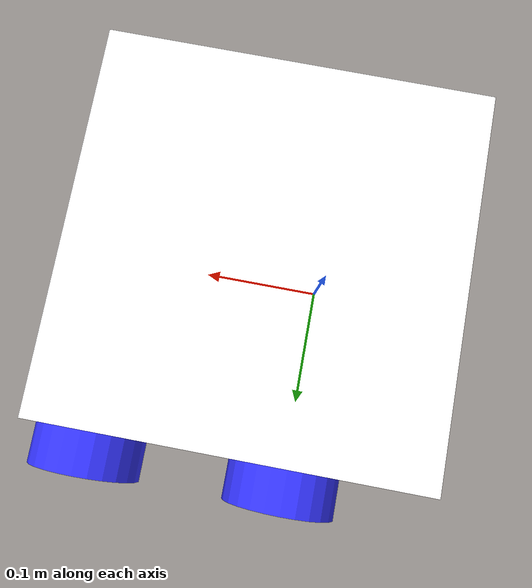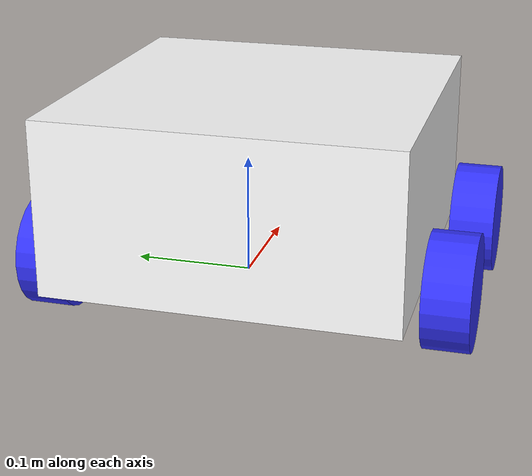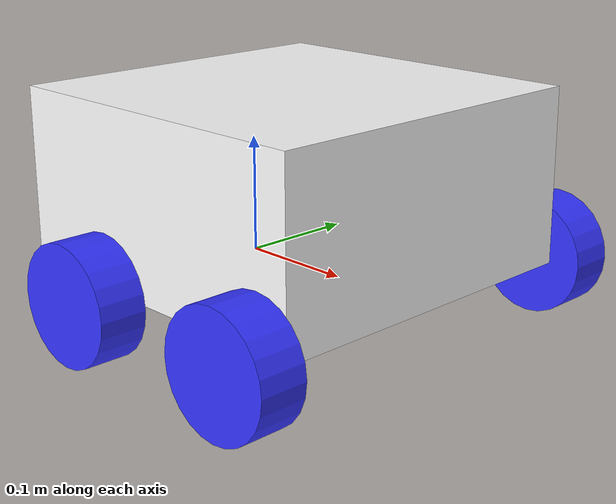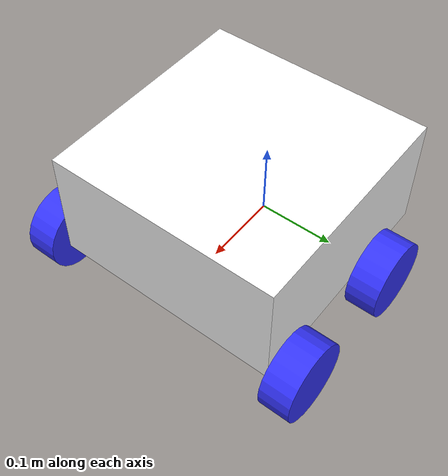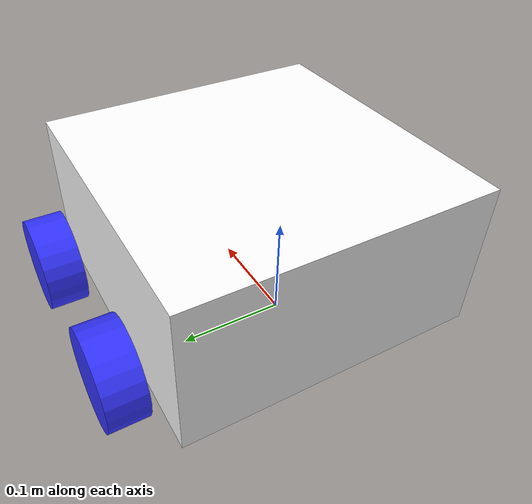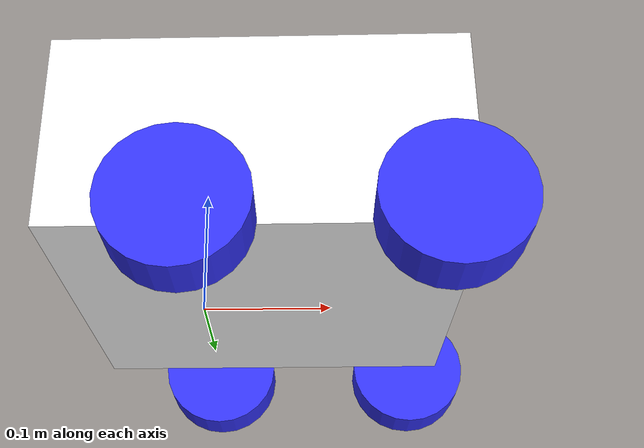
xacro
<?xml version="1.0"?>
<robot xmlns:xacro="http://www.ros.org/wiki/xacro" >

    <xacro:include filename="inertial_macros.xacro"/>

    <material name="white">
        <color rgba="1 1 1 1" />
    </material>

    <material name="orange">
        <color rgba="1 0.3 0.1 1"/>
    </material>

    <material name="blue">
        <color rgba="0.2 0.2 1 1"/>
    </material>

    <material name="black">
        <color rgba="0 0 0 1"/>
    </material>

    <material name="red">
        <color rgba="1 0 0 1"/>
    </material>

    <!-- BASE LINK -->

    <link name="base_link">

    </link>
        <!-- BASE_FOOTPRINT LINK -->

    <joint name="base_footprint_joint" type="fixed">
        <parent link="base_link"/>
        <child link="base_footprint"/>
        <origin xyz="0 0 0" rpy="0 0 0"/>
    </joint>

    <link name="base_footprint">
    </link>

    <!-- CHASSIS LINK -->

    <joint name="chassis_joint" type="fixed">
        <parent link="base_link"/>
        <child link="chassis"/>
        <origin xyz="-0.1 0 0"/>
    </joint>

    <link name="chassis">
        <visual>
            <origin xyz="0.15 0 0.075"/>
            <geometry>
                <box size="0.3 0.3 0.15"/>
            </geometry>
            <material name="white"/>
        </visual>
        <collision>
            <origin xyz="0.15 0 0.075"/>
            <geometry>
                <box size="0.3 0.3 0.15"/>
            </geometry>
        </collision>
        <xacro:inertial_box mass="0.5" x="0.3" y="0.3" z="0.15">
            <origin xyz="0.15 0 0.075" rpy="0 0 0"/>
        </xacro:inertial_box>
    </link>

    <gazebo reference="chassis">
        <material>Gazebo/White</material>
         <mu1 value="0.001"/>
        <mu2 value="0.001"/>
    </gazebo>
        <!-- RIGHT WHEEL LINK -->

    <joint name="right_wheel_joint" type="continuous">
        <parent link="base_link"/>
        <child link="right_wheel"/>
        <origin xyz="0 -0.175 0" rpy="${pi/2} 0 0" />
        <axis xyz="0 0 -1"/>
    </joint>

    <link name="right_wheel">
        <visual>
            <geometry>
                <cylinder radius="0.05" length="0.04"/>
            </geometry>
            <material name="blue"/>
        </visual>
        <collision>
            <geometry>
                <cylinder radius="0.05" length="0.04"/>
            </geometry>
        </collision>
        <xacro:inertial_cylinder mass="0.1" length="0.04" radius="0.05">
            <origin xyz="0 0 0" rpy="0 0 0"/>
        </xacro:inertial_cylinder>
    </link>

    <gazebo reference="right_wheel">
        <material>Gazebo/Blue</material>

    </gazebo>

    <!-- LEFT WHEEL LINK -->

    <joint name="left_wheel_joint" type="continuous">
        <parent link="base_link"/>
        <child link="left_wheel"/>
        <origin xyz="0 0.175 0" rpy="-${pi/2} 0 0" />
        <axis xyz="0 0 1"/>
    </joint>

    <link name="left_wheel">
        <visual>
            <geometry>
                <cylinder radius="0.05" length="0.04"/>
            </geometry>
            <material name="blue"/>
        </visual>
        <collision>
            <geometry>
                <cylinder radius="0.05" length="0.04"/>
            </geometry>
        </collision>
        <xacro:inertial_cylinder mass="0.1" length="0.04" radius="0.05">
            <origin xyz="0 0 0" rpy="0 0 0"/>
        </xacro:inertial_cylinder>
    </link>

    <gazebo reference="left_wheel">
        <material>Gazebo/Blue</material>

    </gazebo>

    <joint name="front_left_wheel_joint" type="continuous">
        <parent link="base_link"/>
        <child link="front_left_wheel"/>
        <origin xyz="0.175 0.175 0" rpy="-${pi/2} 0 0" />
        <axis xyz="0 0 1"/>
    </joint>

    <link name="front_left_wheel">
        <visual>
            <geometry>
                <cylinder radius="0.05" length="0.04"/>
            </geometry>
            <material name="blue"/>
        </visual>
        <collision>
            <geometry>
                <cylinder radius="0.05" length="0.04"/>
            </geometry>
        </collision>
        <xacro:inertial_cylinder mass="0.1" length="0.04" radius="0.05">
            <origin xyz="0 0 0" rpy="0 0 0"/>
        </xacro:inertial_cylinder>
    </link>

    <gazebo reference="front_left_wheel">
        <material>Gazebo/Blue</material>
    </gazebo>

    <!-- RIGHT WHEEL LINK -->

    <joint name="front_right_wheel_joint" type="continuous">
        <parent link="base_link"/>
        <child link="front_right_wheel"/>
        <origin xyz="0.175 -0.175 0" rpy="${pi/2} 0 0" />
        <axis xyz="0 0 -1"/>
    </joint>

    <link name="front_right_wheel">
        <visual>
            <geometry>
                <cylinder radius="0.05" length="0.04"/>
            </geometry>
            <material name="blue"/>
        </visual>
        <collision>
            <geometry>
                <cylinder radius="0.05" length="0.04"/>
            </geometry>
        </collision>
        <xacro:inertial_cylinder mass="0.1" length="0.04" radius="0.05">
            <origin xyz="0 0 0" rpy="0 0 0"/>
        </xacro:inertial_cylinder>
    </link>

    <gazebo reference="front_right_wheel">
        <material>Gazebo/Blue</material>
    </gazebo>

</robot>
